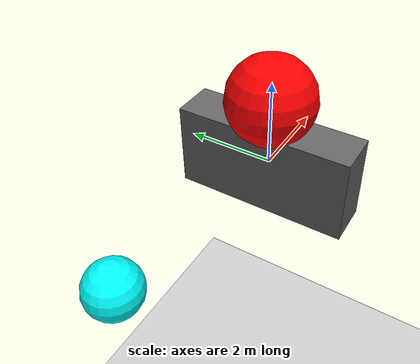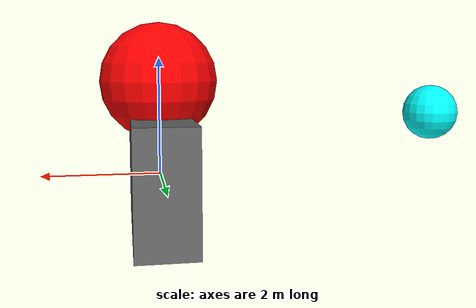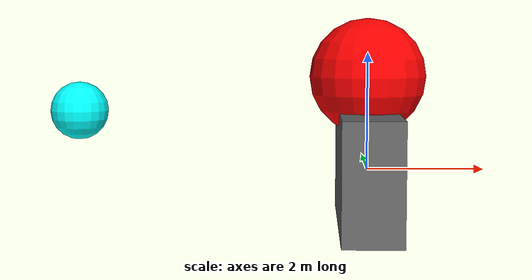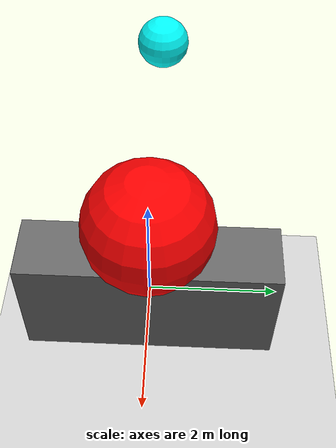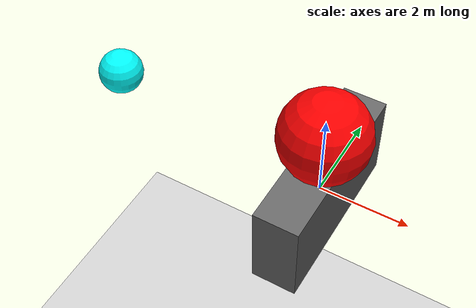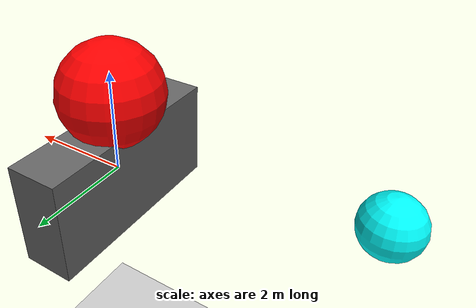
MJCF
<mujoco>
  <option gravity="0 0 -9.81" />
  <worldbody>
    <body name="object_3" pos="0 0 0">
      <geom type="box" size="0.5 2 1" rgba="0.4 0.4 0.4 1" friction="0.6 0.6 0.6" />
    </body>
    <body name="object_4" pos="-10 0 -10">
      <geom type="plane" size="30 30 0.1" rgba="0.8 0.8 0.8 1" friction="1 1 1" />
    </body>
    <body name="object_1" pos="-5 0 1">
      <geom type="sphere" size="0.5" density="1" rgba="0 1 1 1" />
      <joint name="object_1_joint" type="free" />
    </body>
    <body name="sphere_inelastic" pos="0 0 1.6"><geom type="sphere" size="1.0" rgba="1 0 0 1" /></body><body name="sphere_inelastic" pos="0 0 1.6"><geom type="sphere" size="1.0" rgba="1 0 0 1" /></body></worldbody>
</mujoco>
